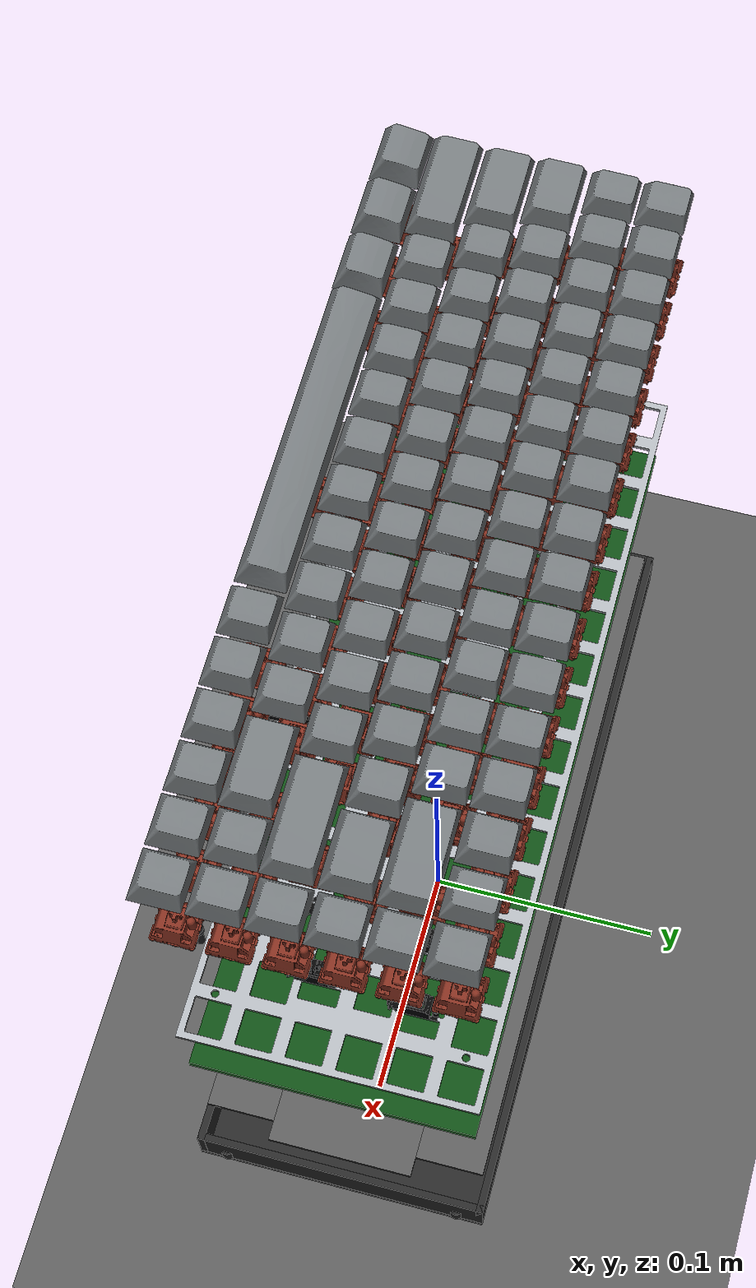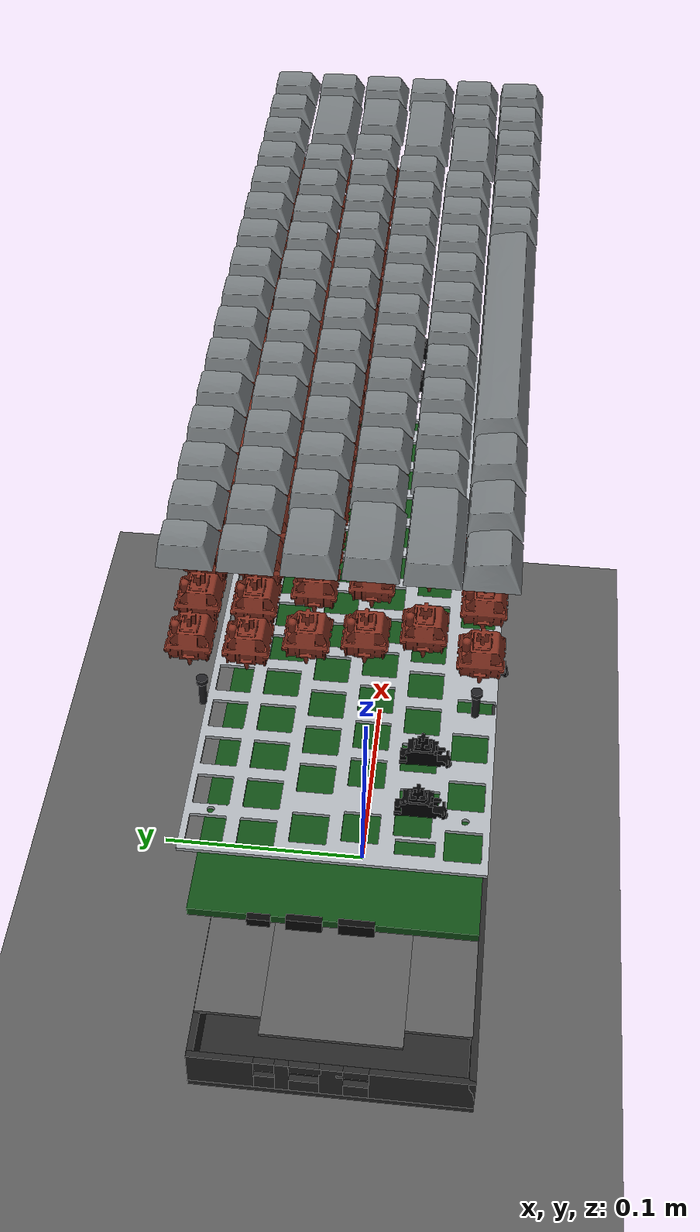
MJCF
<mujoco model="keyboard_exploded_view">
  <compiler angle="radian" autolimits="true"/>
  <option integrator="implicitfast" gravity="0 0 0"/>
  <visual>
    <headlight diffuse="0.65 0.65 0.65" ambient="0.38 0.38 0.38" specular="0.18 0.18 0.18"/>
    <rgba haze="0.15 0.18 0.22 1"/>
    <global azimuth="135" elevation="-25"/>
  </visual>
<asset>
    <texture type="skybox" builtin="gradient" rgb1="0.3 0.5 0.7" rgb2="0 0 0"
             width="512" height="3072"/>
    <texture name="grid" type="2d" builtin="checker"
             rgb1="0.3 0.3 0.3" rgb2="0.4 0.4 0.4" width="512" height="512"/>
    <material name="floor_mat"      texture="grid" texrepeat="5 5" reflectance="0.2"/>
    <material name="aluminum_plate" rgba="0.68 0.70 0.72 1"
              specular="0.45" shininess="0.35" reflectance="0.08"/>
    <material name="fixture_stop"   rgba="1.0 0.85 0.0 1"/>
    <material name="mat_fr4"        rgba="0.06 0.30 0.08 1" specular="0.15" shininess="0.25"/>
    <material name="mat_epdm"       rgba="0.35 0.35 0.35 1" specular="0.02" shininess="0.02"/>
    <material name="mat_screw"      rgba="0.12 0.12 0.13 1" specular="0.55" shininess="0.55"/>
    <material name="stab_white"     rgba="0.01 0.01 0.012 1" specular="0.20" shininess="0.18"/>
    <material name="stab_wire"      rgba="0.54 0.55 0.56 1" specular="0.55" shininess="0.55"/>
    <material name="abs_plastic"    rgba="0.15 0.15 0.15 1"/>
    <material name="table_surface"  rgba="0.55 0.45 0.35 1"/>
    <material name="steel_dark"     rgba="0.25 0.25 0.28 1"/>
    <material name="steel_mid"      rgba="0.40 0.40 0.43 1"/>
    <material name="steel_light"    rgba="0.60 0.60 0.63 1"/>
    <material name="gantry_mat"     rgba="0.30 0.30 0.32 1"/>
    <material name="gantry_beam"    rgba="0.25 0.25 0.27 1"/>
    <material name="column_mat"     rgba="0.35 0.35 0.38 1"/>
    <material name="arm_mat"        rgba="0.50 0.50 0.53 1"/>
    <material name="head_body"      rgba="0.55 0.55 0.58 1"/>
    <material name="head_tip"       rgba="0.15 0.15 0.15 1"/>
    <material name="tray_mat"       rgba="0.70 0.72 0.75 1"/>
    <material name="slide_rail"     rgba="0.50 0.50 0.53 1"/>
    <material name="switch_housing"
              rgba="0.50 0.18 0.12 1"
              specular="0.18" shininess="0.22" reflectance="0.02"/>
    <material name="pbt_keycap"
              rgba="0.45 0.47 0.48 1"
              specular="0.08" shininess="0.15" reflectance="0.015"/>
    <material name="mat_battery"
              rgba="0.01 0.01 0.012 1"
              specular="0.12" shininess="0.18" reflectance="0.01"/>
    <!-- Switch mesh (cosmetic installed switches) -->
    <mesh name="switch_mesh"
          file="../meshes/Switch_Decimated.stl"
          scale="0.001 0.001 0.001"
          refpos="-7.350 0.053 -7.350"
          refquat="0.7071 -0.7071 0 0"/>
    <mesh name="aluminum_plate_mesh"
          file="../meshes/aluminum_plate.stl"
          scale="0.001 0.001 0.001"/>
    <mesh name="stabilizer_mesh"
          file="../meshes/Stabilizer_Decimated.stl"
          scale="0.001 0.001 0.001"
          refpos="-23.958 0.000 -1.712"
          refquat="0.7071 -0.7071 0 0"/>
    <!-- Keycap meshes -->
    <mesh name="keycap_1u"    file="../meshes/keycap_1u.stl"/>
    <mesh name="keycap_1_25u" file="../meshes/keycap_1_25u.stl"/>
    <mesh name="keycap_1_5u"  file="../meshes/keycap_1_5u.stl"/>
    <mesh name="keycap_1_75u" file="../meshes/keycap_1_75u.stl"/>
    <mesh name="keycap_2u"    file="../meshes/keycap_2u.stl"/>
    <mesh name="keycap_2_25u" file="../meshes/keycap_2_25u.stl"/>
    <mesh name="keycap_6_25u" file="../meshes/keycap_6_25u.stl"/>
  </asset>
  <worldbody>
    <!-- Studio-style balanced lighting for report screenshots. -->
    <light name="key_light" pos="0.45 -0.65 1.20" dir="-0.35 0.45 -1" directional="true" diffuse="0.85 0.85 0.85" specular="0.25 0.25 0.25"/>
    <light name="fill_light" pos="-0.70 0.55 1.00" dir="0.55 -0.35 -1" directional="true" diffuse="0.45 0.45 0.45" specular="0.10 0.10 0.10"/>
    <light name="rim_light" pos="0.25 0.70 0.85" dir="-0.20 -0.65 -0.80" directional="true" diffuse="0.35 0.35 0.35" specular="0.30 0.30 0.30"/>
    <light name="top_softbox" pos="0 0 1.35" dir="0 0 -1" directional="true" diffuse="0.55 0.55 0.55" specular="0.15 0.15 0.15"/>
    <geom name="floor" type="plane" size="1.2 1.0 0.05" material="floor_mat" contype="0" conaffinity="0"/>
    <camera name="cam_report_iso" pos="0.520 -0.680 0.610" xyaxes="0.794 0.608 0 -0.287 0.375 0.881" fovy="32"/>
    <camera name="cam_front_low" pos="0.000 -0.790 0.290" xyaxes="1 0 0 0 0.105 0.994" fovy="28"/>
    <camera name="cam_rear_iso" pos="-0.540 0.660 0.600" xyaxes="-0.774 -0.633 0 0.249 -0.305 0.919" fovy="34"/>
    <camera name="cam_left_side" pos="-0.820 0.020 0.390" xyaxes="-0.024 -1.000 0 0.092 -0.002 0.996" fovy="30"/>
    <camera name="cam_top_down" pos="0.000 -0.020 1.100" xyaxes="1 0 0 0 1 0.025" fovy="24"/>
    <camera name="cam_close_stack" pos="0.340 -0.430 0.450" xyaxes="0.785 0.620 0 -0.161 0.204 0.966" fovy="25"/>

    <body name="layer_01_bottom_case" pos="0 0 0.050">
                      <geom conaffinity="0" contype="0" name="case_floor" type="box" size="0.1564 0.06115 0.0015" pos="0 0 -0.0095" material="abs_plastic"/>
                      <geom conaffinity="0" contype="0" name="case_wall_left_A" type="box" size="0.0015 0.01433 0.0095" pos="-0.1549 0.04682 0.0015" material="abs_plastic"/>
                      <geom conaffinity="0" contype="0" name="case_wall_left_usbc_below" type="box" size="0.0015 0.0045 0.0045" pos="-0.1549 0.028 -0.0035" material="abs_plastic"/>
                      <geom conaffinity="0" contype="0" name="case_wall_left_usbc_above" type="box" size="0.0015 0.0045 0.003" pos="-0.1549 0.028 0.008" material="abs_plastic"/>
                      <geom conaffinity="0" contype="0" name="case_wall_left_B" type="box" size="0.0015 0.003 0.0095" pos="-0.1549 0.0205 0.0015" material="abs_plastic"/>
                      <geom conaffinity="0" contype="0" name="case_wall_left_pwr_below" type="box" size="0.0015 0.007 0.004" pos="-0.1549 0.0105 -0.004" material="abs_plastic"/>
                      <geom conaffinity="0" contype="0" name="case_wall_left_pwr_above" type="box" size="0.0015 0.007 0.0025" pos="-0.1549 0.0105 0.0085" material="abs_plastic"/>
                      <geom conaffinity="0" contype="0" name="case_wall_left_C" type="box" size="0.0015 0.005 0.0095" pos="-0.1549 -0.0005 0.0015" material="abs_plastic"/>
                      <geom conaffinity="0" contype="0" name="case_wall_left_os_below" type="box" size="0.0015 0.007 0.004" pos="-0.1549 -0.0095 -0.004" material="abs_plastic"/>
                      <geom conaffinity="0" contype="0" name="case_wall_left_os_above" type="box" size="0.0015 0.007 0.0025" pos="-0.1549 -0.0095 0.0085" material="abs_plastic"/>
                      <geom conaffinity="0" contype="0" name="case_wall_left_D" type="box" size="0.0015 0.02233 0.0095" pos="-0.1549 -0.03883 0.0015" material="abs_plastic"/>
                      <geom conaffinity="0" contype="0" name="case_wall_right" type="box" size="0.0015 0.06115 0.0095" pos="0.1549 0 0.0015" material="abs_plastic"/>
                      <geom conaffinity="0" contype="0" name="case_wall_rear" type="box" size="0.1564 0.0015 0.0095" pos="0 0.05965 0.0015" material="abs_plastic"/>
                      <geom conaffinity="0" contype="0" name="case_wall_front" type="box" size="0.1564 0.0015 0.0095" pos="0 -0.05965 0.0015" material="abs_plastic"/>
                      <geom conaffinity="0" contype="0" name="case_battery_rib_left" type="box" size="0.045 0.00075 0.002" pos="0.025 -0.03075 -0.006" material="abs_plastic"/>
                      <geom conaffinity="0" contype="0" name="case_battery_rib_right" type="box" size="0.045 0.00075 0.002" pos="0.025 0.03075 -0.006" material="abs_plastic"/>
                      <geom conaffinity="0" contype="0" name="case_battery_rib_front_left" type="box" size="0.00075 0.0125 0.002" pos="-0.02025 -0.0175 -0.006" material="abs_plastic"/>
                      <geom conaffinity="0" contype="0" name="case_battery_rib_front_right" type="box" size="0.00075 0.0125 0.002" pos="-0.02025 0.0175 -0.006" material="abs_plastic"/>
                      <geom conaffinity="0" contype="0" name="case_battery_rib_rear" type="box" size="0.00075 0.030 0.002" pos="0.07025 0 -0.006" material="abs_plastic"/>
                      <geom name="case_boss_FL" type="cylinder" size="0.003 0.004" pos="-0.1515 -0.0495 -0.004" material="abs_plastic" mass="0" contype="0" conaffinity="0"/>
                      <geom name="case_boss_FR" type="cylinder" size="0.003 0.004" pos=" 0.1545 -0.0495 -0.004" material="abs_plastic" mass="0" contype="0" conaffinity="0"/>
                      <geom name="case_boss_RL" type="cylinder" size="0.003 0.004" pos="-0.1515  0.0495 -0.004" material="abs_plastic" mass="0" contype="0" conaffinity="0"/>
                      <geom name="case_boss_RR" type="cylinder" size="0.003 0.004" pos=" 0.1545  0.0495 -0.004" material="abs_plastic" mass="0" contype="0" conaffinity="0"/>
    </body>

    <body name="layer_02_epdm_foam" pos="0 0 0.085">
                      <geom name="s4_epdm_front" type="box" size="0.1454 0.01408 0.00075" pos="0 -0.04408 -0.00625" material="mat_epdm" mass="0" contype="0" conaffinity="0"/>
                      <geom name="s4_epdm_rear"  type="box" size="0.1454 0.01408 0.00075" pos="0  0.04408 -0.00625" material="mat_epdm" mass="0" contype="0" conaffinity="0"/>
                      <geom name="s4_epdm_left"  type="box" size="0.06670 0.03000 0.00075" pos="-0.08670 0 -0.00625" material="mat_epdm" mass="0" contype="0" conaffinity="0"/>
                      <geom name="s4_epdm_right" type="box" size="0.04170 0.03000 0.00075" pos=" 0.11170 0 -0.00625" material="mat_epdm" mass="0" contype="0" conaffinity="0"/>
    </body>

    <body name="layer_03_battery" pos="0 0 0.120">
                      <geom name="s4_battery" type="box" size="0.043 0.028 0.003" pos="0.025 0 -0.00250" mass="0" material="mat_battery" contype="0" conaffinity="0"/>
    </body>

    <body name="layer_04_pcb" pos="0 0 0.155">
                      <geom name="s4_pcb" type="box" size="0.1510 0.0560 0.0020" pos="0 0 0.00350" mass="0" material="mat_fr4" contype="0" conaffinity="0"/>
                      <geom name="s4_pcb_usbc" type="box" size="0.0015 0.0045 0.0020" pos="-0.1525 0.0280 0.00450" mass="0" rgba="0.025 0.025 0.025 1" contype="0" conaffinity="0"/>
                      <geom name="s4_pcb_pwr"  type="box" size="0.0015 0.0070 0.0030" pos="-0.1525 0.0105 0.00500" mass="0" rgba="0.025 0.025 0.025 1" contype="0" conaffinity="0"/>
                      <geom name="s4_pcb_os"   type="box" size="0.0015 0.0070 0.0030" pos="-0.1525 -0.0095 0.00500" mass="0" rgba="0.025 0.025 0.025 1" contype="0" conaffinity="0"/>
    </body>

    <!-- Equal-Z exploded stack. Layer positions use 0.055 m spacing. -->
    <body name="layer_05_aluminum_plate" pos="0 0 0.190">
      <body name="exp_alu_plate" pos="0 0 0.00750">
        <geom name="s4_alu_plate" type="mesh" mesh="aluminum_plate_mesh" pos="0.003361 0.00256 0.000747" mass="0" material="aluminum_plate" contype="0" conaffinity="0"/>
      </body>
    </body>

    <body name="layer_06_stabilizers" pos="0 0 0.225">
      <body name="s4_stab_space_L" pos="-0.071208 -0.048626 -0.00550"><geom name="s4_stab_space_L_mesh" type="mesh" mesh="stabilizer_mesh" pos="-0.047852 0.0017 0.00650" material="stab_white" contype="0" conaffinity="0"/></body>
      <body name="s4_stab_space_R" pos="0.028792 -0.048626 -0.00550"><geom name="s4_stab_space_R_mesh" type="mesh" mesh="stabilizer_mesh" pos="-0.047852 0.0017 0.00650" material="stab_white" contype="0" conaffinity="0"/></body>
      <body name="s4_stab_lshift_L" pos="-0.142688 -0.029576 -0.00550"><geom name="s4_stab_lshift_L_mesh" type="mesh" mesh="stabilizer_mesh" pos="-0.047852 0.0017 0.00650" material="stab_white" contype="0" conaffinity="0"/></body>
      <body name="s4_stab_lshift_R" pos="-0.118808 -0.029576 -0.00550"><geom name="s4_stab_lshift_R_mesh" type="mesh" mesh="stabilizer_mesh" pos="-0.047852 0.0017 0.00650" material="stab_white" contype="0" conaffinity="0"/></body>
      <body name="s4_stab_enter_L" pos="0.100202 -0.010516 -0.00550"><geom name="s4_stab_enter_L_mesh" type="mesh" mesh="stabilizer_mesh" pos="-0.047852 0.0017 0.00650" material="stab_white" contype="0" conaffinity="0"/></body>
      <body name="s4_stab_enter_R" pos="0.124082 -0.010516 -0.00550"><geom name="s4_stab_enter_R_mesh" type="mesh" mesh="stabilizer_mesh" pos="-0.047852 0.0017 0.00650" material="stab_white" contype="0" conaffinity="0"/></body>
      <body name="s4_stab_bksp_L" pos="0.102582 0.027584 -0.00550"><geom name="s4_stab_bksp_L_mesh" type="mesh" mesh="stabilizer_mesh" pos="-0.047852 0.0017 0.00650" material="stab_white" contype="0" conaffinity="0"/></body>
      <body name="s4_stab_bksp_R" pos="0.126462 0.027584 -0.00550"><geom name="s4_stab_bksp_R_mesh" type="mesh" mesh="stabilizer_mesh" pos="-0.047852 0.0017 0.00650" material="stab_white" contype="0" conaffinity="0"/></body>
    </body>

    <body name="layer_07_screws" pos="0 0 0.260">
      <geom name="s4_screw_FL_shaft" type="cylinder" size="0.0014 0.005" pos=" 0.133561  0.047060 0.005" material="mat_screw" mass="0" contype="0" conaffinity="0"/>
      <geom name="s4_screw_FL_head"  type="cylinder" size="0.0020 0.001" pos=" 0.133561  0.047060 0.011" material="mat_screw" mass="0" contype="0" conaffinity="0"/>
      <geom name="s4_screw_FR_shaft" type="cylinder" size="0.0014 0.005" pos="-0.1329  0.0476 0.005" material="mat_screw" mass="0" contype="0" conaffinity="0"/>
      <geom name="s4_screw_FR_head"  type="cylinder" size="0.0020 0.001" pos="-0.1329  0.0476 0.011" material="mat_screw" mass="0" contype="0" conaffinity="0"/>
      <geom name="s4_screw_RL_shaft" type="cylinder" size="0.0014 0.005" pos=" 0.1334 -0.0468 0.005" material="mat_screw" mass="0" contype="0" conaffinity="0"/>
      <geom name="s4_screw_RL_head"  type="cylinder" size="0.0020 0.001" pos=" 0.1334 -0.0468 0.011" material="mat_screw" mass="0" contype="0" conaffinity="0"/>
      <geom name="s4_screw_RR_shaft" type="cylinder" size="0.0014 0.005" pos="-0.1288 -0.0472 0.005" material="mat_screw" mass="0" contype="0" conaffinity="0"/>
      <geom name="s4_screw_RR_head"  type="cylinder" size="0.0020 0.001" pos="-0.1288 -0.0472 0.011" material="mat_screw" mass="0" contype="0" conaffinity="0"/>
    </body>

    <body name="layer_08_switches" pos="0 0 0.295">
      <body name="exp_switches_ref" pos="0 0 0.00750">
                          <geom name="ins_sw_Esc" type="mesh" mesh="switch_mesh" pos="-0.15765  0.0480 0.0015" material="switch_housing" contype="0" conaffinity="0"/>
                          <geom name="ins_sw_F1" type="mesh" mesh="switch_mesh" pos="-0.13855  0.0480 0.0015" material="switch_housing" contype="0" conaffinity="0"/>
                          <geom name="ins_sw_F2" type="mesh" mesh="switch_mesh" pos="-0.11955  0.0480 0.0015" material="switch_housing" contype="0" conaffinity="0"/>
                          <geom name="ins_sw_F3" type="mesh" mesh="switch_mesh" pos="-0.10045  0.0480 0.0015" material="switch_housing" contype="0" conaffinity="0"/>
                          <geom name="ins_sw_F4" type="mesh" mesh="switch_mesh" pos="-0.08145  0.0480 0.0015" material="switch_housing" contype="0" conaffinity="0"/>
                          <geom name="ins_sw_F5" type="mesh" mesh="switch_mesh" pos="-0.06235  0.0480 0.0015" material="switch_housing" contype="0" conaffinity="0"/>
                          <geom name="ins_sw_F6" type="mesh" mesh="switch_mesh" pos="-0.04335  0.0480 0.0015" material="switch_housing" contype="0" conaffinity="0"/>
                          <geom name="ins_sw_F7" type="mesh" mesh="switch_mesh" pos="-0.02425  0.0480 0.0015" material="switch_housing" contype="0" conaffinity="0"/>
                          <geom name="ins_sw_F8" type="mesh" mesh="switch_mesh" pos="-0.00525  0.0480 0.0015" material="switch_housing" contype="0" conaffinity="0"/>
                          <geom name="ins_sw_F9" type="mesh" mesh="switch_mesh" pos=" 0.01385  0.0480 0.0015" material="switch_housing" contype="0" conaffinity="0"/>
                          <geom name="ins_sw_F10" type="mesh" mesh="switch_mesh" pos=" 0.03285  0.0480 0.0015" material="switch_housing" contype="0" conaffinity="0"/>
                          <geom name="ins_sw_F11" type="mesh" mesh="switch_mesh" pos=" 0.05195  0.0480 0.0015" material="switch_housing" contype="0" conaffinity="0"/>
                          <geom name="ins_sw_F12" type="mesh" mesh="switch_mesh" pos=" 0.07095  0.0480 0.0015" material="switch_housing" contype="0" conaffinity="0"/>
                          <geom name="ins_sw_PrtSc" type="mesh" mesh="switch_mesh" pos=" 0.09005  0.0480 0.0015" material="switch_housing" contype="0" conaffinity="0"/>
                          <geom name="ins_sw_Pause" type="mesh" mesh="switch_mesh" pos=" 0.10905  0.0480 0.0015" material="switch_housing" contype="0" conaffinity="0"/>
                          <geom name="ins_sw_Del" type="mesh" mesh="switch_mesh" pos=" 0.12815  0.0480 0.0015" material="switch_housing" contype="0" conaffinity="0"/>
                          <geom name="ins_sw_Grave" type="mesh" mesh="switch_mesh" pos="-0.15765  0.0290 0.0015" material="switch_housing" contype="0" conaffinity="0"/>
                          <geom name="ins_sw_1" type="mesh" mesh="switch_mesh" pos="-0.13855  0.0290 0.0015" material="switch_housing" contype="0" conaffinity="0"/>
                          <geom name="ins_sw_2" type="mesh" mesh="switch_mesh" pos="-0.11955  0.0290 0.0015" material="switch_housing" contype="0" conaffinity="0"/>
                          <geom name="ins_sw_3" type="mesh" mesh="switch_mesh" pos="-0.10045  0.0290 0.0015" material="switch_housing" contype="0" conaffinity="0"/>
                          <geom name="ins_sw_4" type="mesh" mesh="switch_mesh" pos="-0.08145  0.0290 0.0015" material="switch_housing" contype="0" conaffinity="0"/>
                          <geom name="ins_sw_5" type="mesh" mesh="switch_mesh" pos="-0.06235  0.0290 0.0015" material="switch_housing" contype="0" conaffinity="0"/>
                          <geom name="ins_sw_6" type="mesh" mesh="switch_mesh" pos="-0.04335  0.0290 0.0015" material="switch_housing" contype="0" conaffinity="0"/>
                          <geom name="ins_sw_7" type="mesh" mesh="switch_mesh" pos="-0.02425  0.0290 0.0015" material="switch_housing" contype="0" conaffinity="0"/>
                          <geom name="ins_sw_8" type="mesh" mesh="switch_mesh" pos="-0.00525  0.0290 0.0015" material="switch_housing" contype="0" conaffinity="0"/>
                          <geom name="ins_sw_9" type="mesh" mesh="switch_mesh" pos=" 0.01385  0.0290 0.0015" material="switch_housing" contype="0" conaffinity="0"/>
                          <geom name="ins_sw_0" type="mesh" mesh="switch_mesh" pos=" 0.03285  0.0290 0.0015" material="switch_housing" contype="0" conaffinity="0"/>
                          <geom name="ins_sw_Minus" type="mesh" mesh="switch_mesh" pos=" 0.05195  0.0290 0.0015" material="switch_housing" contype="0" conaffinity="0"/>
                          <geom name="ins_sw_Equal" type="mesh" mesh="switch_mesh" pos=" 0.07095  0.0290 0.0015" material="switch_housing" contype="0" conaffinity="0"/>
                          <geom name="ins_sw_Bksp" type="mesh" mesh="switch_mesh" pos=" 0.09955  0.0290 0.0015" material="switch_housing" contype="0" conaffinity="0"/>
                          <geom name="ins_sw_PgUp" type="mesh" mesh="switch_mesh" pos=" 0.12815  0.0290 0.0015" material="switch_housing" contype="0" conaffinity="0"/>
                          <geom name="ins_sw_Tab" type="mesh" mesh="switch_mesh" pos="-0.15285  0.0099 0.0015" material="switch_housing" contype="0" conaffinity="0"/>
                          <geom name="ins_sw_Q" type="mesh" mesh="switch_mesh" pos="-0.12905  0.0099 0.0015" material="switch_housing" contype="0" conaffinity="0"/>
                          <geom name="ins_sw_W" type="mesh" mesh="switch_mesh" pos="-0.11005  0.0099 0.0015" material="switch_housing" contype="0" conaffinity="0"/>
                          <geom name="ins_sw_E" type="mesh" mesh="switch_mesh" pos="-0.09095  0.0099 0.0015" material="switch_housing" contype="0" conaffinity="0"/>
                          <geom name="ins_sw_R" type="mesh" mesh="switch_mesh" pos="-0.07195  0.0099 0.0015" material="switch_housing" contype="0" conaffinity="0"/>
                          <geom name="ins_sw_T" type="mesh" mesh="switch_mesh" pos="-0.05285  0.0099 0.0015" material="switch_housing" contype="0" conaffinity="0"/>
                          <geom name="ins_sw_Y" type="mesh" mesh="switch_mesh" pos="-0.03385  0.0099 0.0015" material="switch_housing" contype="0" conaffinity="0"/>
                          <geom name="ins_sw_U" type="mesh" mesh="switch_mesh" pos="-0.01475  0.0099 0.0015" material="switch_housing" contype="0" conaffinity="0"/>
                          <geom name="ins_sw_I" type="mesh" mesh="switch_mesh" pos=" 0.00435  0.0099 0.0015" material="switch_housing" contype="0" conaffinity="0"/>
                          <geom name="ins_sw_O" type="mesh" mesh="switch_mesh" pos=" 0.02335  0.0099 0.0015" material="switch_housing" contype="0" conaffinity="0"/>
                          <geom name="ins_sw_P" type="mesh" mesh="switch_mesh" pos=" 0.04245  0.0099 0.0015" material="switch_housing" contype="0" conaffinity="0"/>
                          <geom name="ins_sw_LBrace" type="mesh" mesh="switch_mesh" pos=" 0.06145  0.0099 0.0015" material="switch_housing" contype="0" conaffinity="0"/>
                          <geom name="ins_sw_RBrace" type="mesh" mesh="switch_mesh" pos=" 0.08055  0.0099 0.0015" material="switch_housing" contype="0" conaffinity="0"/>
                          <geom name="ins_sw_Bkslash" type="mesh" mesh="switch_mesh" pos=" 0.10435  0.0099 0.0015" material="switch_housing" contype="0" conaffinity="0"/>
                          <geom name="ins_sw_PgDn" type="mesh" mesh="switch_mesh" pos=" 0.12815  0.0099 0.0015" material="switch_housing" contype="0" conaffinity="0"/>
                          <geom name="ins_sw_Caps" type="mesh" mesh="switch_mesh" pos="-0.15045 -0.0092 0.0015" material="switch_housing" contype="0" conaffinity="0"/>
                          <geom name="ins_sw_A" type="mesh" mesh="switch_mesh" pos="-0.12425 -0.0092 0.0015" material="switch_housing" contype="0" conaffinity="0"/>
                          <geom name="ins_sw_S" type="mesh" mesh="switch_mesh" pos="-0.10525 -0.0092 0.0015" material="switch_housing" contype="0" conaffinity="0"/>
                          <geom name="ins_sw_D" type="mesh" mesh="switch_mesh" pos="-0.08615 -0.0092 0.0015" material="switch_housing" contype="0" conaffinity="0"/>
                          <geom name="ins_sw_F" type="mesh" mesh="switch_mesh" pos="-0.06715 -0.0092 0.0015" material="switch_housing" contype="0" conaffinity="0"/>
                          <geom name="ins_sw_G" type="mesh" mesh="switch_mesh" pos="-0.04805 -0.0092 0.0015" material="switch_housing" contype="0" conaffinity="0"/>
                          <geom name="ins_sw_H" type="mesh" mesh="switch_mesh" pos="-0.02905 -0.0092 0.0015" material="switch_housing" contype="0" conaffinity="0"/>
                          <geom name="ins_sw_J" type="mesh" mesh="switch_mesh" pos="-0.00995 -0.0092 0.0015" material="switch_housing" contype="0" conaffinity="0"/>
                          <geom name="ins_sw_K" type="mesh" mesh="switch_mesh" pos=" 0.00905 -0.0092 0.0015" material="switch_housing" contype="0" conaffinity="0"/>
                          <geom name="ins_sw_L" type="mesh" mesh="switch_mesh" pos=" 0.02815 -0.0092 0.0015" material="switch_housing" contype="0" conaffinity="0"/>
                          <geom name="ins_sw_Semicol" type="mesh" mesh="switch_mesh" pos=" 0.04715 -0.0092 0.0015" material="switch_housing" contype="0" conaffinity="0"/>
                          <geom name="ins_sw_Quote" type="mesh" mesh="switch_mesh" pos=" 0.06625 -0.0092 0.0015" material="switch_housing" contype="0" conaffinity="0"/>
                          <geom name="ins_sw_Enter" type="mesh" mesh="switch_mesh" pos=" 0.09715 -0.0092 0.0015" material="switch_housing" contype="0" conaffinity="0"/>
                          <geom name="ins_sw_Home" type="mesh" mesh="switch_mesh" pos=" 0.12815 -0.0092 0.0015" material="switch_housing" contype="0" conaffinity="0"/>
                          <geom name="ins_sw_LShift" type="mesh" mesh="switch_mesh" pos="-0.14575 -0.0282 0.0015" material="switch_housing" contype="0" conaffinity="0"/>
                          <geom name="ins_sw_Z" type="mesh" mesh="switch_mesh" pos="-0.11475 -0.0282 0.0015" material="switch_housing" contype="0" conaffinity="0"/>
                          <geom name="ins_sw_X" type="mesh" mesh="switch_mesh" pos="-0.09575 -0.0282 0.0015" material="switch_housing" contype="0" conaffinity="0"/>
                          <geom name="ins_sw_C" type="mesh" mesh="switch_mesh" pos="-0.07665 -0.0282 0.0015" material="switch_housing" contype="0" conaffinity="0"/>
                          <geom name="ins_sw_V" type="mesh" mesh="switch_mesh" pos="-0.05765 -0.0282 0.0015" material="switch_housing" contype="0" conaffinity="0"/>
                          <geom name="ins_sw_B" type="mesh" mesh="switch_mesh" pos="-0.03855 -0.0282 0.0015" material="switch_housing" contype="0" conaffinity="0"/>
                          <geom name="ins_sw_N" type="mesh" mesh="switch_mesh" pos="-0.01955 -0.0282 0.0015" material="switch_housing" contype="0" conaffinity="0"/>
                          <geom name="ins_sw_M" type="mesh" mesh="switch_mesh" pos="-0.00045 -0.0282 0.0015" material="switch_housing" contype="0" conaffinity="0"/>
                          <geom name="ins_sw_Comma" type="mesh" mesh="switch_mesh" pos=" 0.01855 -0.0282 0.0015" material="switch_housing" contype="0" conaffinity="0"/>
                          <geom name="ins_sw_Period" type="mesh" mesh="switch_mesh" pos=" 0.03765 -0.0282 0.0015" material="switch_housing" contype="0" conaffinity="0"/>
                          <geom name="ins_sw_Slash" type="mesh" mesh="switch_mesh" pos=" 0.05665 -0.0282 0.0015" material="switch_housing" contype="0" conaffinity="0"/>
                          <geom name="ins_sw_RShift" type="mesh" mesh="switch_mesh" pos=" 0.08285 -0.0282 0.0015" material="switch_housing" contype="0" conaffinity="0"/>
                          <geom name="ins_sw_Up" type="mesh" mesh="switch_mesh" pos=" 0.10905 -0.0282 0.0015" material="switch_housing" contype="0" conaffinity="0"/>
                          <geom name="ins_sw_End" type="mesh" mesh="switch_mesh" pos=" 0.12815 -0.0282 0.0015" material="switch_housing" contype="0" conaffinity="0"/>
                          <geom name="ins_sw_LCtrl" type="mesh" mesh="switch_mesh" pos="-0.15525 -0.0473 0.0015" material="switch_housing" contype="0" conaffinity="0"/>
                          <geom name="ins_sw_LWin" type="mesh" mesh="switch_mesh" pos="-0.13145 -0.0473 0.0015" material="switch_housing" contype="0" conaffinity="0"/>
                          <geom name="ins_sw_LAlt" type="mesh" mesh="switch_mesh" pos="-0.10765 -0.0473 0.0015" material="switch_housing" contype="0" conaffinity="0"/>
                          <geom name="ins_sw_Space" type="mesh" mesh="switch_mesh" pos="-0.03615 -0.0473 0.0015" material="switch_housing" contype="0" conaffinity="0"/>
                          <geom name="ins_sw_RAlt" type="mesh" mesh="switch_mesh" pos=" 0.03285 -0.0473 0.0015" material="switch_housing" contype="0" conaffinity="0"/>
                          <geom name="ins_sw_Fn" type="mesh" mesh="switch_mesh" pos=" 0.05195 -0.0473 0.0015" material="switch_housing" contype="0" conaffinity="0"/>
                          <geom name="ins_sw_Left" type="mesh" mesh="switch_mesh" pos=" 0.07095 -0.0473 0.0015" material="switch_housing" contype="0" conaffinity="0"/>
                          <geom name="ins_sw_Down" type="mesh" mesh="switch_mesh" pos=" 0.09005 -0.0473 0.0015" material="switch_housing" contype="0" conaffinity="0"/>
                          <geom name="ins_sw_Right" type="mesh" mesh="switch_mesh" pos=" 0.10905 -0.0473 0.0015" material="switch_housing" contype="0" conaffinity="0"/>
                          <geom name="ins_sw_End2" type="mesh" mesh="switch_mesh" pos=" 0.12815 -0.0473 0.0015" material="switch_housing" contype="0" conaffinity="0"/>
      </body>
    </body>

    <body name="layer_09_keycaps" pos="0 0 0.330">
      <body name="exp_keycaps_ref" pos="0 0 0.00750">
      <body name="exp_kc_Esc" pos="-0.1429  0.0480 0.0050">
        <geom name="exp_kc_Esc_geom" type="mesh" mesh="keycap_1u" material="pbt_keycap" contype="0" conaffinity="0"/>
      </body>
      <body name="exp_kc_F1" pos="-0.1238  0.0480 0.0050">
        <geom name="exp_kc_F1_geom" type="mesh" mesh="keycap_1u" material="pbt_keycap" contype="0" conaffinity="0"/>
      </body>
      <body name="exp_kc_F2" pos="-0.1048  0.0480 0.0050">
        <geom name="exp_kc_F2_geom" type="mesh" mesh="keycap_1u" material="pbt_keycap" contype="0" conaffinity="0"/>
      </body>
      <body name="exp_kc_F3" pos="-0.0857  0.0480 0.0050">
        <geom name="exp_kc_F3_geom" type="mesh" mesh="keycap_1u" material="pbt_keycap" contype="0" conaffinity="0"/>
      </body>
      <body name="exp_kc_F4" pos="-0.0667  0.0480 0.0050">
        <geom name="exp_kc_F4_geom" type="mesh" mesh="keycap_1u" material="pbt_keycap" contype="0" conaffinity="0"/>
      </body>
      <body name="exp_kc_F5" pos="-0.0476  0.0480 0.0050">
        <geom name="exp_kc_F5_geom" type="mesh" mesh="keycap_1u" material="pbt_keycap" contype="0" conaffinity="0"/>
      </body>
      <body name="exp_kc_F6" pos="-0.0286  0.0480 0.0050">
        <geom name="exp_kc_F6_geom" type="mesh" mesh="keycap_1u" material="pbt_keycap" contype="0" conaffinity="0"/>
      </body>
      <body name="exp_kc_F7" pos="-0.0095  0.0480 0.0050">
        <geom name="exp_kc_F7_geom" type="mesh" mesh="keycap_1u" material="pbt_keycap" contype="0" conaffinity="0"/>
      </body>
      <body name="exp_kc_F8" pos=" 0.0095  0.0480 0.0050">
        <geom name="exp_kc_F8_geom" type="mesh" mesh="keycap_1u" material="pbt_keycap" contype="0" conaffinity="0"/>
      </body>
      <body name="exp_kc_F9" pos=" 0.0286  0.0480 0.0050">
        <geom name="exp_kc_F9_geom" type="mesh" mesh="keycap_1u" material="pbt_keycap" contype="0" conaffinity="0"/>
      </body>
      <body name="exp_kc_F10" pos=" 0.0476  0.0480 0.0050">
        <geom name="exp_kc_F10_geom" type="mesh" mesh="keycap_1u" material="pbt_keycap" contype="0" conaffinity="0"/>
      </body>
      <body name="exp_kc_F11" pos=" 0.0667  0.0480 0.0050">
        <geom name="exp_kc_F11_geom" type="mesh" mesh="keycap_1u" material="pbt_keycap" contype="0" conaffinity="0"/>
      </body>
      <body name="exp_kc_F12" pos=" 0.0857  0.0480 0.0050">
        <geom name="exp_kc_F12_geom" type="mesh" mesh="keycap_1u" material="pbt_keycap" contype="0" conaffinity="0"/>
      </body>
      <body name="exp_kc_PrtSc" pos=" 0.1048  0.0480 0.0050">
        <geom name="exp_kc_PrtSc_geom" type="mesh" mesh="keycap_1u" material="pbt_keycap" contype="0" conaffinity="0"/>
      </body>
      <body name="exp_kc_Pause" pos=" 0.1238  0.0480 0.0050">
        <geom name="exp_kc_Pause_geom" type="mesh" mesh="keycap_1u" material="pbt_keycap" contype="0" conaffinity="0"/>
      </body>
      <body name="exp_kc_Del" pos=" 0.1429  0.0480 0.0050">
        <geom name="exp_kc_Del_geom" type="mesh" mesh="keycap_1u" material="pbt_keycap" contype="0" conaffinity="0"/>
      </body>
      <body name="exp_kc_Grave" pos="-0.1429  0.0290 0.0050">
        <geom name="exp_kc_Grave_geom" type="mesh" mesh="keycap_1u" material="pbt_keycap" contype="0" conaffinity="0"/>
      </body>
      <body name="exp_kc_1" pos="-0.1238  0.0290 0.0050">
        <geom name="exp_kc_1_geom" type="mesh" mesh="keycap_1u" material="pbt_keycap" contype="0" conaffinity="0"/>
      </body>
      <body name="exp_kc_2" pos="-0.1048  0.0290 0.0050">
        <geom name="exp_kc_2_geom" type="mesh" mesh="keycap_1u" material="pbt_keycap" contype="0" conaffinity="0"/>
      </body>
      <body name="exp_kc_3" pos="-0.0857  0.0290 0.0050">
        <geom name="exp_kc_3_geom" type="mesh" mesh="keycap_1u" material="pbt_keycap" contype="0" conaffinity="0"/>
      </body>
      <body name="exp_kc_4" pos="-0.0667  0.0290 0.0050">
        <geom name="exp_kc_4_geom" type="mesh" mesh="keycap_1u" material="pbt_keycap" contype="0" conaffinity="0"/>
      </body>
      <body name="exp_kc_5" pos="-0.0476  0.0290 0.0050">
        <geom name="exp_kc_5_geom" type="mesh" mesh="keycap_1u" material="pbt_keycap" contype="0" conaffinity="0"/>
      </body>
      <body name="exp_kc_6" pos="-0.0286  0.0290 0.0050">
        <geom name="exp_kc_6_geom" type="mesh" mesh="keycap_1u" material="pbt_keycap" contype="0" conaffinity="0"/>
      </body>
      <body name="exp_kc_7" pos="-0.0095  0.0290 0.0050">
        <geom name="exp_kc_7_geom" type="mesh" mesh="keycap_1u" material="pbt_keycap" contype="0" conaffinity="0"/>
      </body>
      <body name="exp_kc_8" pos=" 0.0095  0.0290 0.0050">
        <geom name="exp_kc_8_geom" type="mesh" mesh="keycap_1u" material="pbt_keycap" contype="0" conaffinity="0"/>
      </body>
      <body name="exp_kc_9" pos=" 0.0286  0.0290 0.0050">
        <geom name="exp_kc_9_geom" type="mesh" mesh="keycap_1u" material="pbt_keycap" contype="0" conaffinity="0"/>
      </body>
      <body name="exp_kc_0" pos=" 0.0476  0.0290 0.0050">
        <geom name="exp_kc_0_geom" type="mesh" mesh="keycap_1u" material="pbt_keycap" contype="0" conaffinity="0"/>
      </body>
      <body name="exp_kc_Minus" pos=" 0.0667  0.0290 0.0050">
        <geom name="exp_kc_Minus_geom" type="mesh" mesh="keycap_1u" material="pbt_keycap" contype="0" conaffinity="0"/>
      </body>
      <body name="exp_kc_Equal" pos=" 0.0857  0.0290 0.0050">
        <geom name="exp_kc_Equal_geom" type="mesh" mesh="keycap_1u" material="pbt_keycap" contype="0" conaffinity="0"/>
      </body>
      <body name="exp_kc_Bksp" pos=" 0.1143  0.0290 0.0050">
        <geom name="exp_kc_Bksp_geom" type="mesh" mesh="keycap_2u" material="pbt_keycap" contype="0" conaffinity="0"/>
      </body>
      <body name="exp_kc_PgUp" pos=" 0.1429  0.0290 0.0050">
        <geom name="exp_kc_PgUp_geom" type="mesh" mesh="keycap_1u" material="pbt_keycap" contype="0" conaffinity="0"/>
      </body>
      <body name="exp_kc_Tab" pos="-0.1381  0.0099 0.0050">
        <geom name="exp_kc_Tab_geom" type="mesh" mesh="keycap_1_5u" material="pbt_keycap" contype="0" conaffinity="0"/>
      </body>
      <body name="exp_kc_Q" pos="-0.1143  0.0099 0.0050">
        <geom name="exp_kc_Q_geom" type="mesh" mesh="keycap_1u" material="pbt_keycap" contype="0" conaffinity="0"/>
      </body>
      <body name="exp_kc_W" pos="-0.0953  0.0099 0.0050">
        <geom name="exp_kc_W_geom" type="mesh" mesh="keycap_1u" material="pbt_keycap" contype="0" conaffinity="0"/>
      </body>
      <body name="exp_kc_E" pos="-0.0762  0.0099 0.0050">
        <geom name="exp_kc_E_geom" type="mesh" mesh="keycap_1u" material="pbt_keycap" contype="0" conaffinity="0"/>
      </body>
      <body name="exp_kc_R" pos="-0.0572  0.0099 0.0050">
        <geom name="exp_kc_R_geom" type="mesh" mesh="keycap_1u" material="pbt_keycap" contype="0" conaffinity="0"/>
      </body>
      <body name="exp_kc_T" pos="-0.0381  0.0099 0.0050">
        <geom name="exp_kc_T_geom" type="mesh" mesh="keycap_1u" material="pbt_keycap" contype="0" conaffinity="0"/>
      </body>
      <body name="exp_kc_Y" pos="-0.0191  0.0099 0.0050">
        <geom name="exp_kc_Y_geom" type="mesh" mesh="keycap_1u" material="pbt_keycap" contype="0" conaffinity="0"/>
      </body>
      <body name="exp_kc_U" pos=" 0.0000  0.0099 0.0050">
        <geom name="exp_kc_U_geom" type="mesh" mesh="keycap_1u" material="pbt_keycap" contype="0" conaffinity="0"/>
      </body>
      <body name="exp_kc_I" pos=" 0.0191  0.0099 0.0050">
        <geom name="exp_kc_I_geom" type="mesh" mesh="keycap_1u" material="pbt_keycap" contype="0" conaffinity="0"/>
      </body>
      <body name="exp_kc_O" pos=" 0.0381  0.0099 0.0050">
        <geom name="exp_kc_O_geom" type="mesh" mesh="keycap_1u" material="pbt_keycap" contype="0" conaffinity="0"/>
      </body>
      <body name="exp_kc_P" pos=" 0.0572  0.0099 0.0050">
        <geom name="exp_kc_P_geom" type="mesh" mesh="keycap_1u" material="pbt_keycap" contype="0" conaffinity="0"/>
      </body>
      <body name="exp_kc_LBrace" pos=" 0.0762  0.0099 0.0050">
        <geom name="exp_kc_LBrace_geom" type="mesh" mesh="keycap_1u" material="pbt_keycap" contype="0" conaffinity="0"/>
      </body>
      <body name="exp_kc_RBrace" pos=" 0.0953  0.0099 0.0050">
        <geom name="exp_kc_RBrace_geom" type="mesh" mesh="keycap_1u" material="pbt_keycap" contype="0" conaffinity="0"/>
      </body>
      <body name="exp_kc_Bkslash" pos=" 0.1191  0.0099 0.0050">
        <geom name="exp_kc_Bkslash_geom" type="mesh" mesh="keycap_1_5u" material="pbt_keycap" contype="0" conaffinity="0"/>
      </body>
      <body name="exp_kc_PgDn" pos=" 0.1429  0.0099 0.0050">
        <geom name="exp_kc_PgDn_geom" type="mesh" mesh="keycap_1u" material="pbt_keycap" contype="0" conaffinity="0"/>
      </body>
      <body name="exp_kc_Caps" pos="-0.1357 -0.0092 0.0050">
        <geom name="exp_kc_Caps_geom" type="mesh" mesh="keycap_1_75u" material="pbt_keycap" contype="0" conaffinity="0"/>
      </body>
      <body name="exp_kc_A" pos="-0.1095 -0.0092 0.0050">
        <geom name="exp_kc_A_geom" type="mesh" mesh="keycap_1u" material="pbt_keycap" contype="0" conaffinity="0"/>
      </body>
      <body name="exp_kc_S" pos="-0.0905 -0.0092 0.0050">
        <geom name="exp_kc_S_geom" type="mesh" mesh="keycap_1u" material="pbt_keycap" contype="0" conaffinity="0"/>
      </body>
      <body name="exp_kc_D" pos="-0.0714 -0.0092 0.0050">
        <geom name="exp_kc_D_geom" type="mesh" mesh="keycap_1u" material="pbt_keycap" contype="0" conaffinity="0"/>
      </body>
      <body name="exp_kc_F" pos="-0.0524 -0.0092 0.0050">
        <geom name="exp_kc_F_geom" type="mesh" mesh="keycap_1u" material="pbt_keycap" contype="0" conaffinity="0"/>
      </body>
      <body name="exp_kc_G" pos="-0.0333 -0.0092 0.0050">
        <geom name="exp_kc_G_geom" type="mesh" mesh="keycap_1u" material="pbt_keycap" contype="0" conaffinity="0"/>
      </body>
      <body name="exp_kc_H" pos="-0.0143 -0.0092 0.0050">
        <geom name="exp_kc_H_geom" type="mesh" mesh="keycap_1u" material="pbt_keycap" contype="0" conaffinity="0"/>
      </body>
      <body name="exp_kc_J" pos=" 0.0048 -0.0092 0.0050">
        <geom name="exp_kc_J_geom" type="mesh" mesh="keycap_1u" material="pbt_keycap" contype="0" conaffinity="0"/>
      </body>
      <body name="exp_kc_K" pos=" 0.0238 -0.0092 0.0050">
        <geom name="exp_kc_K_geom" type="mesh" mesh="keycap_1u" material="pbt_keycap" contype="0" conaffinity="0"/>
      </body>
      <body name="exp_kc_L" pos=" 0.0429 -0.0092 0.0050">
        <geom name="exp_kc_L_geom" type="mesh" mesh="keycap_1u" material="pbt_keycap" contype="0" conaffinity="0"/>
      </body>
      <body name="exp_kc_Semicol" pos=" 0.0619 -0.0092 0.0050">
        <geom name="exp_kc_Semicol_geom" type="mesh" mesh="keycap_1u" material="pbt_keycap" contype="0" conaffinity="0"/>
      </body>
      <body name="exp_kc_Quote" pos=" 0.0810 -0.0092 0.0050">
        <geom name="exp_kc_Quote_geom" type="mesh" mesh="keycap_1u" material="pbt_keycap" contype="0" conaffinity="0"/>
      </body>
      <body name="exp_kc_Enter" pos=" 0.1119 -0.0092 0.0050">
        <geom name="exp_kc_Enter_geom" type="mesh" mesh="keycap_2_25u" material="pbt_keycap" contype="0" conaffinity="0"/>
      </body>
      <body name="exp_kc_Home" pos=" 0.1429 -0.0092 0.0050">
        <geom name="exp_kc_Home_geom" type="mesh" mesh="keycap_1u" material="pbt_keycap" contype="0" conaffinity="0"/>
      </body>
      <body name="exp_kc_LShift" pos="-0.1310 -0.0282 0.0050">
        <geom name="exp_kc_LShift_geom" type="mesh" mesh="keycap_2_25u" material="pbt_keycap" contype="0" conaffinity="0"/>
      </body>
      <body name="exp_kc_Z" pos="-0.1000 -0.0282 0.0050">
        <geom name="exp_kc_Z_geom" type="mesh" mesh="keycap_1u" material="pbt_keycap" contype="0" conaffinity="0"/>
      </body>
      <body name="exp_kc_X" pos="-0.0810 -0.0282 0.0050">
        <geom name="exp_kc_X_geom" type="mesh" mesh="keycap_1u" material="pbt_keycap" contype="0" conaffinity="0"/>
      </body>
      <body name="exp_kc_C" pos="-0.0619 -0.0282 0.0050">
        <geom name="exp_kc_C_geom" type="mesh" mesh="keycap_1u" material="pbt_keycap" contype="0" conaffinity="0"/>
      </body>
      <body name="exp_kc_V" pos="-0.0429 -0.0282 0.0050">
        <geom name="exp_kc_V_geom" type="mesh" mesh="keycap_1u" material="pbt_keycap" contype="0" conaffinity="0"/>
      </body>
      <body name="exp_kc_B" pos="-0.0238 -0.0282 0.0050">
        <geom name="exp_kc_B_geom" type="mesh" mesh="keycap_1u" material="pbt_keycap" contype="0" conaffinity="0"/>
      </body>
      <body name="exp_kc_N" pos="-0.0048 -0.0282 0.0050">
        <geom name="exp_kc_N_geom" type="mesh" mesh="keycap_1u" material="pbt_keycap" contype="0" conaffinity="0"/>
      </body>
      <body name="exp_kc_M" pos=" 0.0143 -0.0282 0.0050">
        <geom name="exp_kc_M_geom" type="mesh" mesh="keycap_1u" material="pbt_keycap" contype="0" conaffinity="0"/>
      </body>
      <body name="exp_kc_Comma" pos=" 0.0333 -0.0282 0.0050">
        <geom name="exp_kc_Comma_geom" type="mesh" mesh="keycap_1u" material="pbt_keycap" contype="0" conaffinity="0"/>
      </body>
      <body name="exp_kc_Period" pos=" 0.0524 -0.0282 0.0050">
        <geom name="exp_kc_Period_geom" type="mesh" mesh="keycap_1u" material="pbt_keycap" contype="0" conaffinity="0"/>
      </body>
      <body name="exp_kc_Slash" pos=" 0.0714 -0.0282 0.0050">
        <geom name="exp_kc_Slash_geom" type="mesh" mesh="keycap_1u" material="pbt_keycap" contype="0" conaffinity="0"/>
      </body>
      <body name="exp_kc_RShift" pos=" 0.0976 -0.0282 0.0050">
        <geom name="exp_kc_RShift_geom" type="mesh" mesh="keycap_1_75u" material="pbt_keycap" contype="0" conaffinity="0"/>
      </body>
      <body name="exp_kc_Up" pos=" 0.1238 -0.0282 0.0050">
        <geom name="exp_kc_Up_geom" type="mesh" mesh="keycap_1u" material="pbt_keycap" contype="0" conaffinity="0"/>
      </body>
      <body name="exp_kc_End" pos=" 0.1429 -0.0282 0.0050">
        <geom name="exp_kc_End_geom" type="mesh" mesh="keycap_1u" material="pbt_keycap" contype="0" conaffinity="0"/>
      </body>
      <body name="exp_kc_LCtrl" pos="-0.1405 -0.0473 0.0050">
        <geom name="exp_kc_LCtrl_geom" type="mesh" mesh="keycap_1_25u" material="pbt_keycap" contype="0" conaffinity="0"/>
      </body>
      <body name="exp_kc_LWin" pos="-0.1167 -0.0473 0.0050">
        <geom name="exp_kc_LWin_geom" type="mesh" mesh="keycap_1_25u" material="pbt_keycap" contype="0" conaffinity="0"/>
      </body>
      <body name="exp_kc_LAlt" pos="-0.0929 -0.0473 0.0050">
        <geom name="exp_kc_LAlt_geom" type="mesh" mesh="keycap_1_25u" material="pbt_keycap" contype="0" conaffinity="0"/>
      </body>
      <body name="exp_kc_Space" pos="-0.0214 -0.0473 0.0050">
        <geom name="exp_kc_Space_geom" type="mesh" mesh="keycap_6_25u" material="pbt_keycap" contype="0" conaffinity="0"/>
      </body>
      <body name="exp_kc_RAlt" pos=" 0.0476 -0.0473 0.0050">
        <geom name="exp_kc_RAlt_geom" type="mesh" mesh="keycap_1u" material="pbt_keycap" contype="0" conaffinity="0"/>
      </body>
      <body name="exp_kc_Fn" pos=" 0.0667 -0.0473 0.0050">
        <geom name="exp_kc_Fn_geom" type="mesh" mesh="keycap_1u" material="pbt_keycap" contype="0" conaffinity="0"/>
      </body>
      <body name="exp_kc_Left" pos=" 0.0857 -0.0473 0.0050">
        <geom name="exp_kc_Left_geom" type="mesh" mesh="keycap_1u" material="pbt_keycap" contype="0" conaffinity="0"/>
      </body>
      <body name="exp_kc_Down" pos=" 0.1048 -0.0473 0.0050">
        <geom name="exp_kc_Down_geom" type="mesh" mesh="keycap_1u" material="pbt_keycap" contype="0" conaffinity="0"/>
      </body>
      <body name="exp_kc_Right" pos=" 0.1238 -0.0473 0.0050">
        <geom name="exp_kc_Right_geom" type="mesh" mesh="keycap_1u" material="pbt_keycap" contype="0" conaffinity="0"/>
      </body>
      <body name="exp_kc_End2" pos=" 0.1429 -0.0473 0.0050">
        <geom name="exp_kc_End2_geom" type="mesh" mesh="keycap_1u" material="pbt_keycap" contype="0" conaffinity="0"/>
      </body>
      </body>
    </body>

  </worldbody>
</mujoco>
